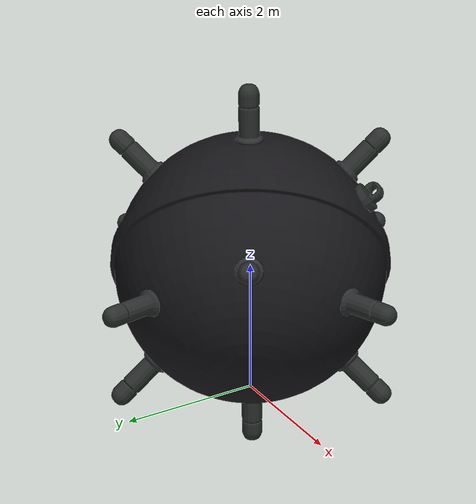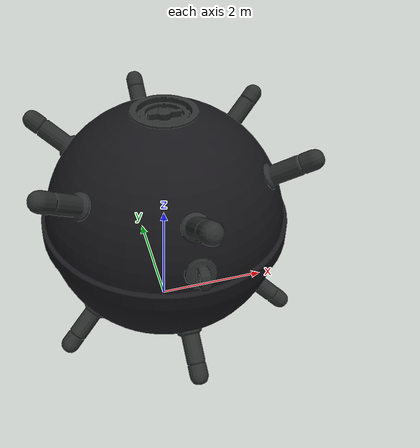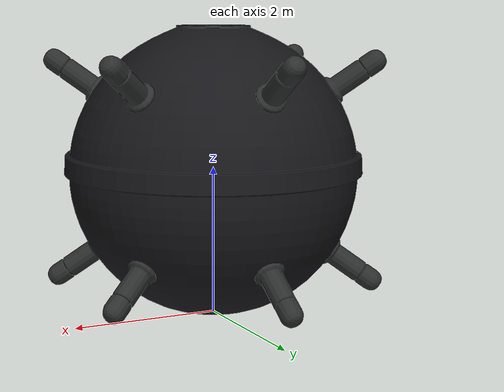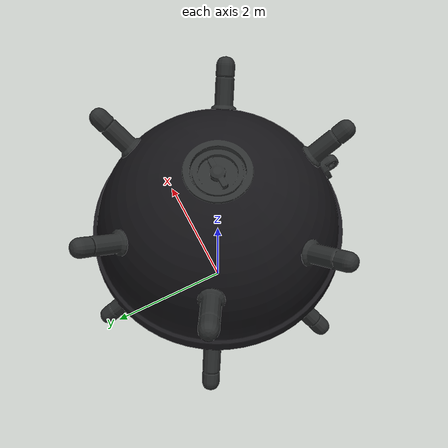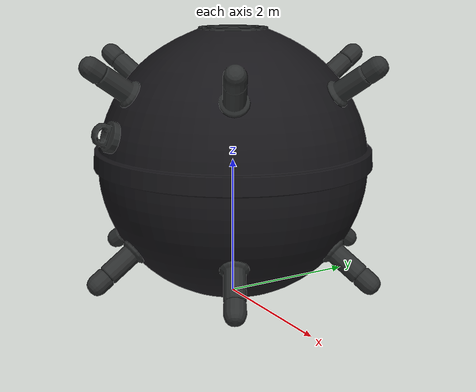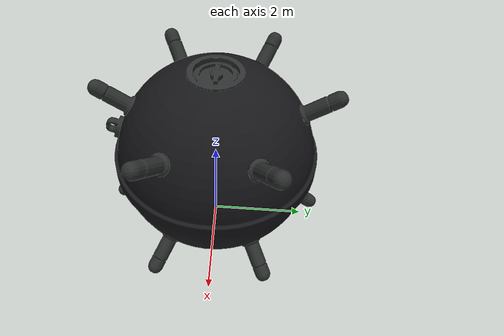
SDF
<?xml version="1.0"?>
<sdf version="1.10">
    <model name="MineSinking">
        <plugin
            filename="LoggingSystem"
            name="logging_system::LoggingSystem">
        </plugin>
        <pose>0 0 0 0 0 0</pose>
        <static>false</static>
        <link name="link">
            <inertial>
                <mass>1</mass>
                <inertia>
                    <ixx>1</ixx>
                    <ixy>0</ixy>
                    <ixz>0</ixz>
                    <iyy>1</iyy>
                    <iyz>0</iyz>
                    <izz>1</izz>
                </inertia>
            </inertial>
            <collision name="collision">
                <geometry>
                    <mesh>
                        <uri>./meshes/mine.stl</uri>
                        <scale>4 4 4</scale>
                    </mesh>
                </geometry>
            </collision>
            <sensor name='sensor_contact' type='contact'>
                <contact>
                    <collision>collision</collision>
                </contact>
            </sensor>
            <visual name="visual">
                <geometry>
                    <mesh>
                        <uri>./meshes/mine.dae</uri>
                        <scale>4 4 4</scale>
                    </mesh>
                </geometry>
            </visual>
        </link>
        <plugin filename="gz-sim-contact-system" name="gz::sim::systems::Contact"></plugin>
        <plugin filename="ExplosiveMine" name="mine::ExplosiveMine">
            <targets>
                <item>Boat</item>
                <item>Smallboat</item>
                <item>lrauv</item>
                <item>rexrov2</item>
                <item>lrauv_float</item>
                <item>ns_main</item>
            </targets>
            <namespace>mine</namespace>
            <time>0.001</time>
            <enabled>true</enabled>
        </plugin>
    </model>
</sdf>
